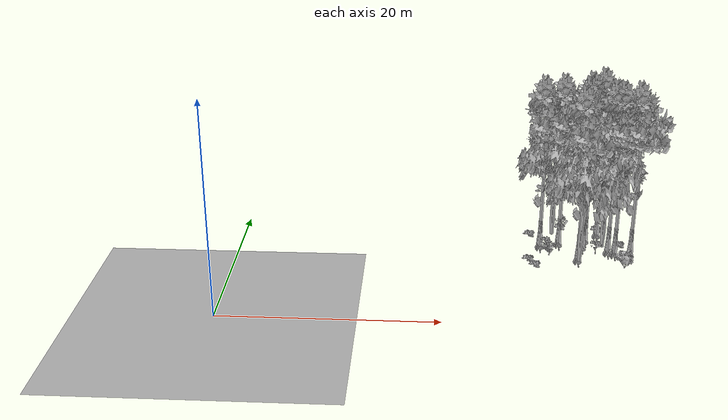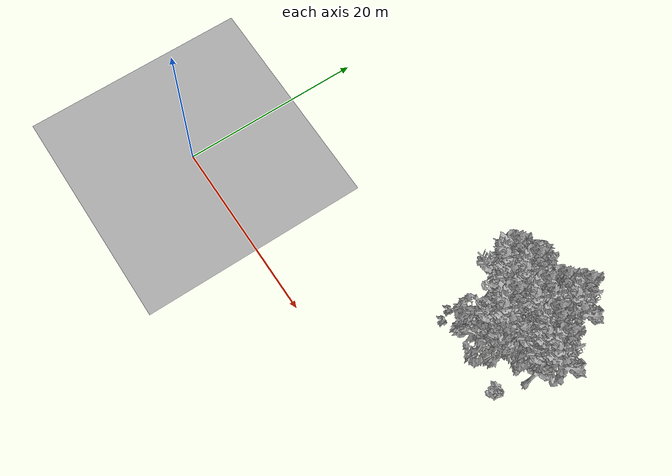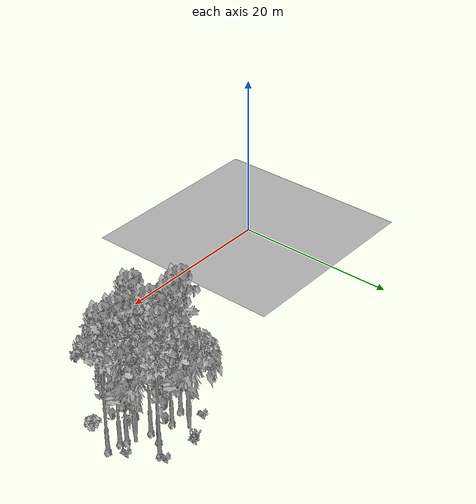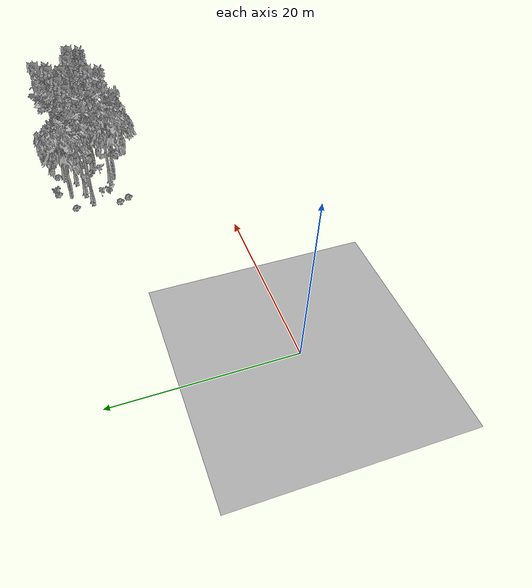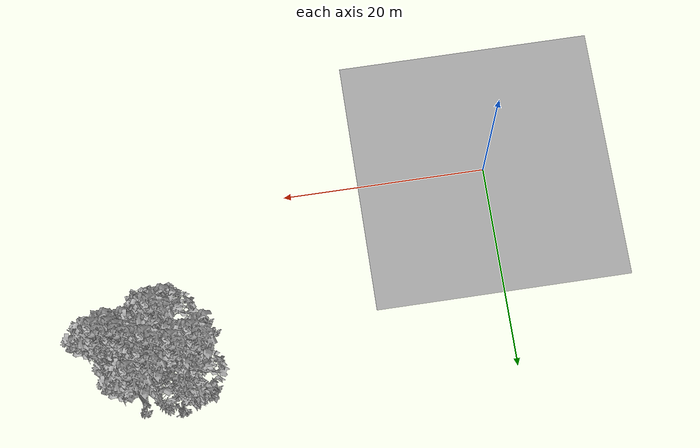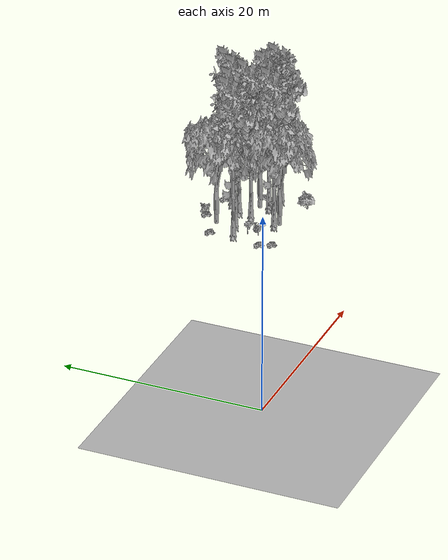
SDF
<sdf version="1.7">
 <world name="default">
  <model name="ground_plane">
   <static>1</static>
   <link name="link">
    <collision name="collision">
     <pose>-50 0 0 0 -0 0</pose>
     <geometry><plane><normal>0 0 1</normal><size>80 80</size></plane></geometry>
     <surface><contact><ode><min_depth>0.01</min_depth><max_vel>0</max_vel></ode></contact></surface>
    </collision>
    <visual name="grass">
     <cast_shadows>0</cast_shadows>
     <geometry>
      <mesh>
       <scale>0.46714285714285714 0.46714285714285714 0.1</scale>
       <uri>file://grass_plane/meshes/grass_plane.dae</uri>
      </mesh>
     </geometry>
    </visual>
   </link>
  </model>
  <model name="Tree 5">
   <static>1</static>
   <pose>35.85761464989527 18.543120433513458 0 1.57079 -0 0</pose>
   <link name="link">
    <collision name="collision">
     <geometry><mesh><scale>3.5 5 3.5</scale><uri>model://tree_9/meshes/tree_9.obj</uri></mesh></geometry>
    </collision>
    <visual name="visual">
     <geometry><mesh><scale>3.5 5 3.5</scale><uri>model://tree_9/meshes/tree_9.obj</uri></mesh></geometry>
    </visual>
   </link>
  </model>
  <model name="Tree 75">
   <static>1</static>
   <pose>34.042017268133435 15.677073300327137 0 1.57079 -0 0</pose>
   <link name="link">
    <collision name="collision">
     <geometry><mesh><scale>3.5 5 3.5</scale><uri>model://tree_9/meshes/tree_9.obj</uri></mesh></geometry>
    </collision>
    <visual name="visual">
     <geometry><mesh><scale>3.5 5 3.5</scale><uri>model://tree_9/meshes/tree_9.obj</uri></mesh></geometry>
    </visual>
   </link>
  </model>
  <model name="Tree 254">
   <static>1</static>
   <pose>38.578094581621016 14.299056094189723 0 1.57079 -0 0</pose>
   <link name="link">
    <collision name="collision">
     <geometry><mesh><scale>3.5 5 3.5</scale><uri>model://tree_9/meshes/tree_9.obj</uri></mesh></geometry>
    </collision>
    <visual name="visual">
     <geometry><mesh><scale>3.5 5 3.5</scale><uri>model://tree_9/meshes/tree_9.obj</uri></mesh></geometry>
    </visual>
   </link>
  </model>
  <model name="Tree 301">
   <static>1</static>
   <pose>31.770413126978156 16.38690526031411 0 1.57079 -0 0</pose>
   <link name="link">
    <collision name="collision">
     <geometry><mesh><scale>3.5 5 3.5</scale><uri>model://tree_9/meshes/tree_9.obj</uri></mesh></geometry>
    </collision>
    <visual name="visual">
     <geometry><mesh><scale>3.5 5 3.5</scale><uri>model://tree_9/meshes/tree_9.obj</uri></mesh></geometry>
    </visual>
   </link>
  </model>
  <model name="Tree 321">
   <static>1</static>
   <pose>36.45391711261327 14.753741104650288 0 1.57079 -0 0</pose>
   <link name="link">
    <collision name="collision">
     <geometry><mesh><scale>3.5 5 3.5</scale><uri>model://tree_9/meshes/tree_9.obj</uri></mesh></geometry>
    </collision>
    <visual name="visual">
     <geometry><mesh><scale>3.5 5 3.5</scale><uri>model://tree_9/meshes/tree_9.obj</uri></mesh></geometry>
    </visual>
   </link>
  </model>
  <model name="Tree 327">
   <static>1</static>
   <pose>34.51586708508623 17.15695515974579 0 1.57079 -0 0</pose>
   <link name="link">
    <collision name="collision">
     <geometry><mesh><scale>3.5 5 3.5</scale><uri>model://tree_9/meshes/tree_9.obj</uri></mesh></geometry>
    </collision>
    <visual name="visual">
     <geometry><mesh><scale>3.5 5 3.5</scale><uri>model://tree_9/meshes/tree_9.obj</uri></mesh></geometry>
    </visual>
   </link>
  </model>
  <model name="Tree 369">
   <static>1</static>
   <pose>35.9162268698675 15.521477664774054 0 1.57079 -0 0</pose>
   <link name="link">
    <collision name="collision">
     <geometry><mesh><scale>3.5 5 3.5</scale><uri>model://tree_2/meshes/tree_2.obj</uri></mesh></geometry>
    </collision>
    <visual name="visual">
     <geometry><mesh><scale>3.5 5 3.5</scale><uri>model://tree_2/meshes/tree_2.obj</uri></mesh></geometry>
    </visual>
   </link>
  </model>
  <model name="Tree 373">
   <static>1</static>
   <pose>33.297753144985904 12.876592338562894 0 1.57079 -0 0</pose>
   <link name="link">
    <collision name="collision">
     <geometry><mesh><scale>3.5 5 3.5</scale><uri>model://tree_9/meshes/tree_9.obj</uri></mesh></geometry>
    </collision>
    <visual name="visual">
     <geometry><mesh><scale>3.5 5 3.5</scale><uri>model://tree_9/meshes/tree_9.obj</uri></mesh></geometry>
    </visual>
   </link>
  </model>
  <model name="Tree 417">
   <static>1</static>
   <pose>31.19356287265363 18.21010711375162 0 1.57079 -0 0</pose>
   <link name="link">
    <collision name="collision">
     <geometry><mesh><scale>3.5 5 3.5</scale><uri>model://tree_2/meshes/tree_2.obj</uri></mesh></geometry>
    </collision>
    <visual name="visual">
     <geometry><mesh><scale>3.5 5 3.5</scale><uri>model://tree_2/meshes/tree_2.obj</uri></mesh></geometry>
    </visual>
   </link>
  </model>
  <model name="Tree 587">
   <static>1</static>
   <pose>33.29783978210253 12.311256668492476 0 1.57079 -0 0</pose>
   <link name="link">
    <collision name="collision">
     <geometry><mesh><scale>3.5 5 3.5</scale><uri>model://tree_2/meshes/tree_2.obj</uri></mesh></geometry>
    </collision>
    <visual name="visual">
     <geometry><mesh><scale>3.5 5 3.5</scale><uri>model://tree_2/meshes/tree_2.obj</uri></mesh></geometry>
    </visual>
   </link>
  </model>
  <model name="Tree 598">
   <static>1</static>
   <pose>29.83335026365907 15.774014584575212 0 1.57079 -0 0</pose>
   <link name="link">
    <collision name="collision">
     <geometry><mesh><scale>3.5 5 3.5</scale><uri>model://tree_9/meshes/tree_9.obj</uri></mesh></geometry>
    </collision>
    <visual name="visual">
     <geometry><mesh><scale>3.5 5 3.5</scale><uri>model://tree_9/meshes/tree_9.obj</uri></mesh></geometry>
    </visual>
   </link>
  </model>
  <model name="Tree 619">
   <static>1</static>
   <pose>37.06774507132941 14.433031338451357 0 1.57079 -0 0</pose>
   <link name="link">
    <collision name="collision">
     <geometry><mesh><scale>3.5 5 3.5</scale><uri>model://tree_9/meshes/tree_9.obj</uri></mesh></geometry>
    </collision>
    <visual name="visual">
     <geometry><mesh><scale>3.5 5 3.5</scale><uri>model://tree_9/meshes/tree_9.obj</uri></mesh></geometry>
    </visual>
   </link>
  </model>
  <model name="Bush 30">
   <static>1</static>
   <pose>28.98001902789565 17.951098601890543 0 1.57079 -0 0</pose>
   <link name="link">
    <collision name="collision">
     <geometry><mesh><scale>2 2 2</scale><uri>model://bush_2/meshes/bush_2.obj</uri></mesh></geometry>
     <surface><contact><collide_without_contact>false</collide_without_contact></contact></surface>
    </collision>
    <visual name="visual">
     <geometry><mesh><scale>2 2 2</scale><uri>model://bush_2/meshes/bush_2.obj</uri></mesh></geometry>
    </visual>
   </link>
  </model>
  <model name="Bush 52">
   <static>1</static>
   <pose>37.73537088310917 15.913865716261213 0 1.57079 -0 0</pose>
   <link name="link">
    <collision name="collision">
     <geometry><mesh><scale>2 2 2</scale><uri>model://bush_2/meshes/bush_2.obj</uri></mesh></geometry>
     <surface><contact><collide_without_contact>false</collide_without_contact></contact></surface>
    </collision>
    <visual name="visual">
     <geometry><mesh><scale>2 2 2</scale><uri>model://bush_2/meshes/bush_2.obj</uri></mesh></geometry>
    </visual>
   </link>
  </model>
  <model name="Bush 206">
   <static>1</static>
   <pose>30.34831826851746 14.450053736529043 0 1.57079 -0 0</pose>
   <link name="link">
    <collision name="collision">
     <geometry><mesh><scale>2 2 2</scale><uri>model://bush_5/meshes/bush_5.obj</uri></mesh></geometry>
     <surface><contact><collide_without_contact>false</collide_without_contact></contact></surface>
    </collision>
    <visual name="visual">
     <geometry><mesh><scale>2 2 2</scale><uri>model://bush_5/meshes/bush_5.obj</uri></mesh></geometry>
    </visual>
   </link>
  </model>
  <model name="Bush 230">
   <static>1</static>
   <pose>37.530287147653354 11.034969696697203 0 1.57079 -0 0</pose>
   <link name="link">
    <collision name="collision">
     <geometry><mesh><scale>2 2 2</scale><uri>model://bush_1/meshes/bush_1.obj</uri></mesh></geometry>
     <surface><contact><collide_without_contact>false</collide_without_contact></contact></surface>
    </collision>
    <visual name="visual">
     <geometry><mesh><scale>2 2 2</scale><uri>model://bush_1/meshes/bush_1.obj</uri></mesh></geometry>
    </visual>
   </link>
  </model>
  <model name="Bush 233">
   <static>1</static>
   <pose>29.01909912255138 11.293140812104177 0 1.57079 -0 0</pose>
   <link name="link">
    <collision name="collision">
     <geometry><mesh><scale>2 2 2</scale><uri>model://bush_2/meshes/bush_2.obj</uri></mesh></geometry>
     <surface><contact><collide_without_contact>false</collide_without_contact></contact></surface>
    </collision>
    <visual name="visual">
     <geometry><mesh><scale>2 2 2</scale><uri>model://bush_2/meshes/bush_2.obj</uri></mesh></geometry>
    </visual>
   </link>
  </model>
  <model name="Bush 267">
   <static>1</static>
   <pose>32.323125889958916 19.870766084835495 0 1.57079 -0 0</pose>
   <link name="link">
    <collision name="collision">
     <geometry><mesh><scale>2 2 2</scale><uri>model://bush_4/meshes/bush_4.obj</uri></mesh></geometry>
     <surface><contact><collide_without_contact>false</collide_without_contact></contact></surface>
    </collision>
    <visual name="visual">
     <geometry><mesh><scale>2 2 2</scale><uri>model://bush_4/meshes/bush_4.obj</uri></mesh></geometry>
    </visual>
   </link>
  </model>
  <model name="Bush 336">
   <static>1</static>
   <pose>32.26669343370945 19.7439056920173 0 1.57079 -0 0</pose>
   <link name="link">
    <collision name="collision">
     <geometry><mesh><scale>2 2 2</scale><uri>model://bush_2/meshes/bush_2.obj</uri></mesh></geometry>
     <surface><contact><collide_without_contact>false</collide_without_contact></contact></surface>
    </collision>
    <visual name="visual">
     <geometry><mesh><scale>2 2 2</scale><uri>model://bush_2/meshes/bush_2.obj</uri></mesh></geometry>
    </visual>
   </link>
  </model>
  <model name="Bush 350">
   <static>1</static>
   <pose>28.46257626908927 12.451887637308623 0 1.57079 -0 0</pose>
   <link name="link">
    <collision name="collision">
     <geometry><mesh><scale>2 2 2</scale><uri>model://bush_2/meshes/bush_2.obj</uri></mesh></geometry>
     <surface><contact><collide_without_contact>false</collide_without_contact></contact></surface>
    </collision>
    <visual name="visual">
     <geometry><mesh><scale>2 2 2</scale><uri>model://bush_2/meshes/bush_2.obj</uri></mesh></geometry>
    </visual>
   </link>
  </model>
  <model name="Bush 364">
   <static>1</static>
   <pose>35.90946550948979 19.323203097371326 0 1.57079 -0 0</pose>
   <link name="link">
    <collision name="collision">
     <geometry><mesh><scale>2 2 2</scale><uri>model://bush_2/meshes/bush_2.obj</uri></mesh></geometry>
     <surface><contact><collide_without_contact>false</collide_without_contact></contact></surface>
    </collision>
    <visual name="visual">
     <geometry><mesh><scale>2 2 2</scale><uri>model://bush_2/meshes/bush_2.obj</uri></mesh></geometry>
    </visual>
   </link>
  </model>
  <model name="Bush 433">
   <static>1</static>
   <pose>35.14525871666426 13.90159318782829 0 1.57079 -0 0</pose>
   <link name="link">
    <collision name="collision">
     <geometry><mesh><scale>2 2 2</scale><uri>model://bush_5/meshes/bush_5.obj</uri></mesh></geometry>
     <surface><contact><collide_without_contact>false</collide_without_contact></contact></surface>
    </collision>
    <visual name="visual">
     <geometry><mesh><scale>2 2 2</scale><uri>model://bush_5/meshes/bush_5.obj</uri></mesh></geometry>
    </visual>
   </link>
  </model>
  <model name="Bush 605">
   <static>1</static>
   <pose>30.55732974052208 13.419925962429069 0 1.57079 -0 0</pose>
   <link name="link">
    <collision name="collision">
     <geometry><mesh><scale>2 2 2</scale><uri>model://bush_0/meshes/bush_0.obj</uri></mesh></geometry>
     <surface><contact><collide_without_contact>false</collide_without_contact></contact></surface>
    </collision>
    <visual name="visual">
     <geometry><mesh><scale>2 2 2</scale><uri>model://bush_0/meshes/bush_0.obj</uri></mesh></geometry>
    </visual>
   </link>
  </model>
 </world>
</sdf>
